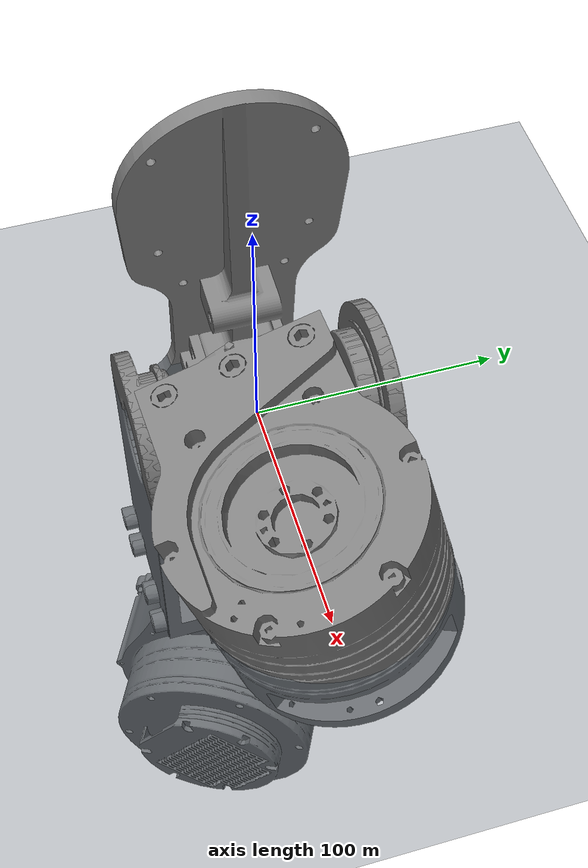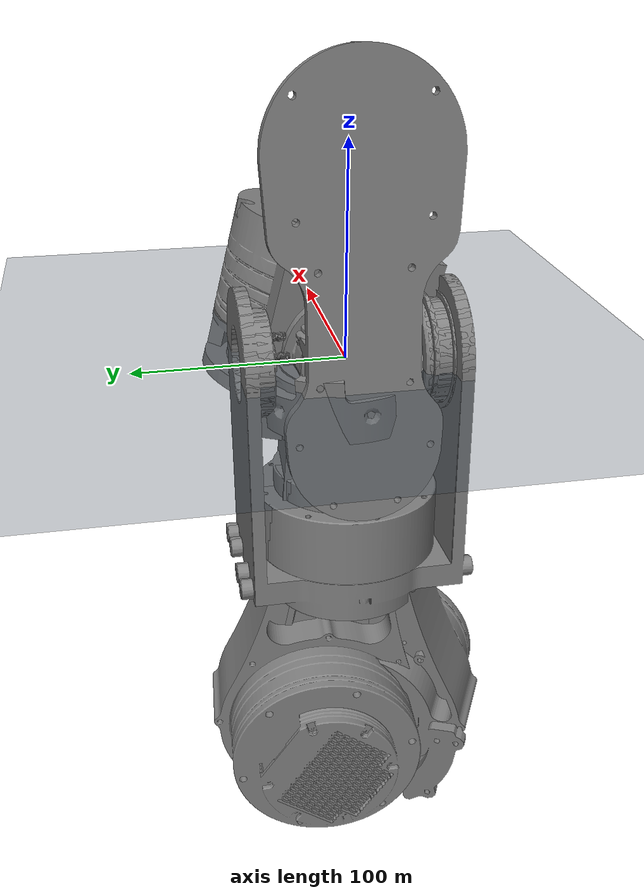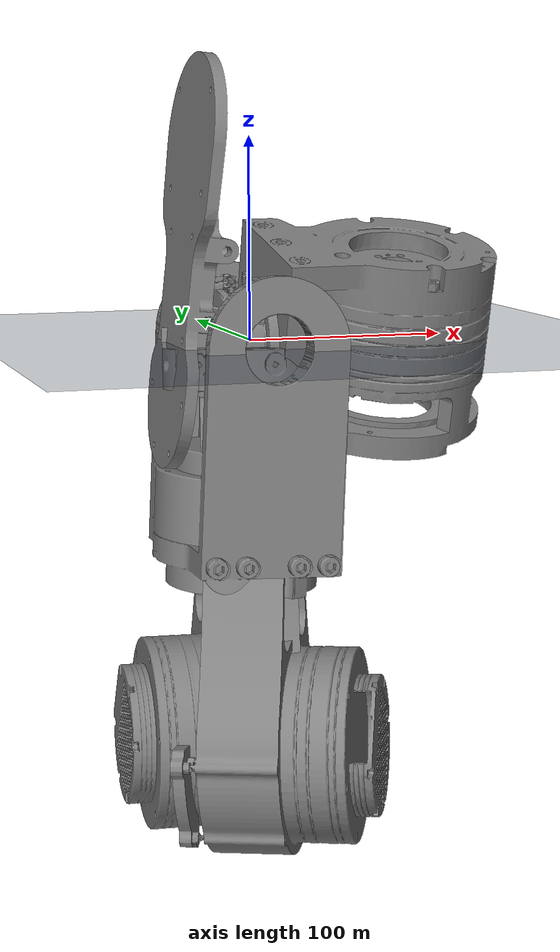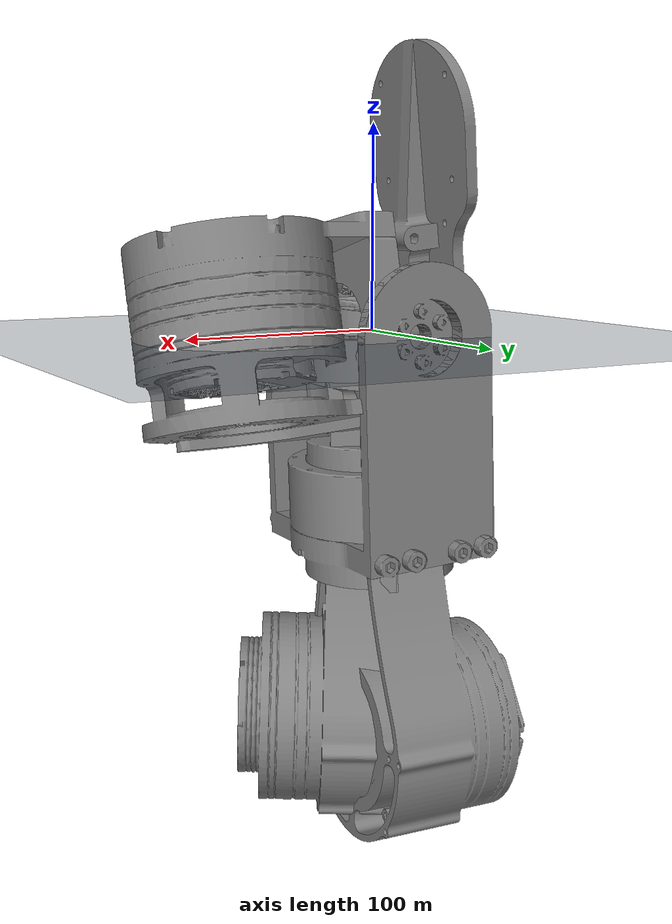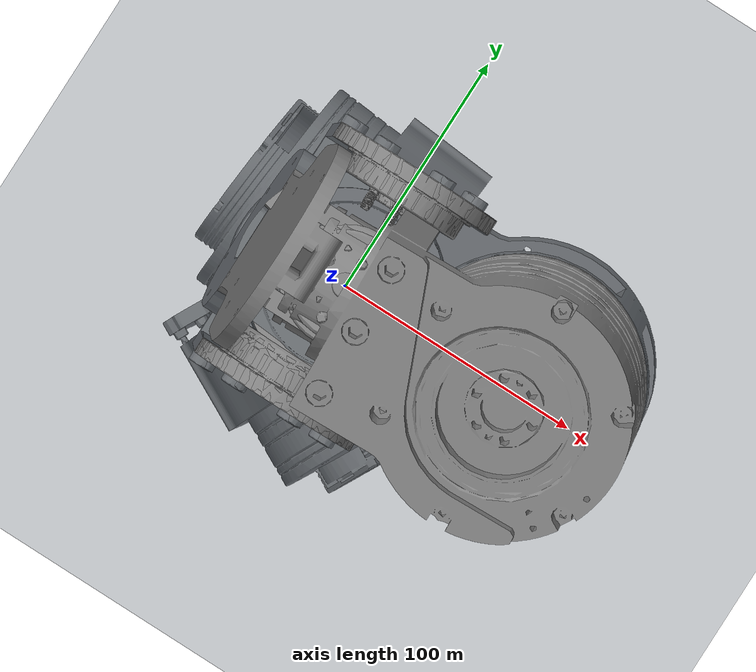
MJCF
<mujoco model="biped 12-dof robot">
  <compiler angle="radian" meshdir="meshes/" autolimits="true"/>

  <option gravity="0 0 -9.81" timestep="0.001"/>

  <statistic center="0 0 0.5" extent="1.0" meansize="0.05"/>

  <visual>
    <headlight diffuse="0.6 0.6 0.6" ambient="0.3 0.3 0.3" specular="0 0 0"/>
    <rgba haze="0.15 0.25 0.35 1"/>
    <global azimuth="-140" elevation="-20"/>
  </visual>

  <asset>
    <mesh name="link0_torso"           file="link0_torso.stl"/>
    <mesh name="left_hip_pitch_link"   file="left_hip_pitch_link.stl"/>
    <mesh name="left_hip_roll_link"    file="left_hip_roll_link.stl"/>
    <mesh name="left_hip_yaw_link"     file="left_hip_yaw_link.stl"/>
    <mesh name="left_knee_link"        file="left_knee_link.stl"/>
    <mesh name="left_ankle_roll_link"  file="left_ankle_roll_link.stl"/>
    <mesh name="left_ankle_pitch_link" file="left_ankle_pitch_link.stl"/>
    <mesh name="right_hip_pitch_link"  file="right_hip_pitch_link.stl"/>
    <mesh name="right_hip_roll_link"   file="right_hip_roll_link.stl"/>
    <mesh name="right_hip_yaw_link"    file="right_hip_yaw_link.stl"/>
    <mesh name="right_knee_link"       file="right_knee_link.stl"/>
    <mesh name="right_ankle_roll_link" file="right_ankle_roll_link.stl"/>
    <mesh name="right_ankle_pitch_link" file="right_ankle_pitch_link.stl"/>

    <texture type="2d" name="groundplane" builtin="checker" mark="random"
        rgb1="0.25 0.3 0.35" rgb2="0.15 0.2 0.25"
        markrgb="0.6 0.7 0.8" width="512" height="512"/>
    <material name="groundplane" texture="groundplane" texuniform="true" texrepeat="2 2" reflectance="0.05"/>
  </asset>

  <!-- Joint damping matches Pinocchio model (zero) for FK/ID comparison.
       Restore real values once verification is complete. -->
  <default>
    <joint damping="0.0" armature="0.0" frictionloss="0.0"/>
    <geom contype="0" conaffinity="0" group="1" density="0"/>
  </default>

  <contact>
    <pair geom1="floor" geom2="Left_Foot"  solimp="0.9 0.95 0.0001" solref="0.001 1"/>
    <pair geom1="floor" geom2="Right_Foot" solimp="0.9 0.95 0.0001" solref="0.001 1"/>
  </contact>

  <worldbody>
    <light pos="0 0 3.5" dir="0 0 -1" directional="true"/>
    <geom name="floor" size="0 0 0.05" type="plane" material="groundplane"
          contype="1" conaffinity="1"/>

    <!-- Pinocchio FK markers (positions overwritten at runtime after mj_forward) -->
    <site name="left_foot_pinocchio"  type="sphere" size="0.04" rgba="0.1 0.9 0.1 0.8" pos="0  0.09 0"/>
    <site name="right_foot_pinocchio" type="sphere" size="0.04" rgba="1.0 0.5 0.0 0.8" pos="0 -0.09 0"/>

    <!-- Floating-base torso — initial height matched to Pinocchio base_z param -->
    <body name="link0_torso" pos="0 0 0.9">
      <joint name="floating_base_joint" type="free" limited="false" actuatorfrclimited="false"/>
      <inertial pos="2.2e-05 1.1e-05 -0.009359" quat="1 0.000109506 -6.05167e-05 -0.000118194"
                mass="5.721" diaginertia="0.1338 0.1019 0.06278"/>
      <geom name="Geom_1" pos="7.79603e-05 0.000318037 0.096917"
            quat="0.999999 -0.000330979 -0.00042909 0.0009936"
            type="mesh" mesh="link0_torso"/>

      <!-- IMU site for sensor readings -->
      <site name="torso_imu" type="box" pos="0.02 0 0.02" size="0.01 0.01 0.01" rgba="1 0 0 1"/>

      <!-- ── Left leg ─────────────────────────────────────────────────────── -->
      <body name="left_hip_pitch_link" pos="0 0.089761 -0.081437" quat="0.991445 -0.130526 0 0">
        <inertial pos="0.005535 0.059218 0.000579" quat="0.54321 0.471468 -0.526254 0.453539"
                  mass="1.764" diaginertia="0.00348919 0.00333912 0.00226469"/>
        <joint name="left_hip_pitch_joint" pos="0 0 0" axis="0 1 0"
               range="-1.0472 1.0472" actuatorfrcrange="-1000 1000"/>
        <geom name="Geom_2" pos="0.00167993 0.0555442 0.000550872"
              quat="0.519286 0.481585 -0.521694 0.475661" type="mesh" mesh="left_hip_pitch_link"/>

        <body name="left_hip_roll_link" pos="0 0.075 0" quat="0.991445 0.130526 0 0">
          <inertial pos="1.6e-05 -0.000136 -0.073241" quat="0.706689 0.00287917 0.00343692 0.70751"
                    mass="1.2918" diaginertia="0.003153 0.00235903 0.00197497"/>
          <joint name="left_hip_roll_joint" pos="0 0 0" axis="1 0 0"
                 range="-0.785398 1.0472" actuatorfrcrange="-1000 1000"/>
          <geom name="Geom_3" pos="0.000168753 -1.79876e-05 -0.0688067"
                quat="0.70714 0.012963 0.0137087 0.706821" type="mesh" mesh="left_hip_roll_link"/>

          <body name="left_hip_yaw_link" pos="0 0 -0.1205">
            <inertial pos="-0.000314 -0.013334 -0.166036" quat="0.726021 -0.0341239 0.0343947 0.685964"
                      mass="1.983" diaginertia="0.012177 0.0116484 0.00198957"/>
            <joint name="left_hip_yaw_joint" pos="0 0 0" axis="0 0 1"
                   range="-0.785398 0.785398" actuatorfrcrange="-1000 1000"/>
            <geom name="Geom_4" pos="-0.000532642 -0.00659485 -0.138083"
                  quat="0.853343 -0.0319929 0.0228041 0.519868" type="mesh" mesh="left_hip_yaw_link"/>

            <body name="left_knee_link" pos="0 0 -0.2035">
              <inertial pos="0.0097 0.003585 -0.164623" quat="0.997864 -0.0268182 -0.0298229 -0.0515561"
                        mass="1.894" diaginertia="0.017253 0.0170683 0.00140868"/>
              <joint name="left_knee_pitch_joint" pos="0 0 0" axis="0 1 0"
                     range="-0.174533 2.0944" actuatorfrcrange="-1000 1000"/>
              <geom name="Geom_5" pos="0.00720688 0.00529163 -0.162386"
                    quat="0.999286 -0.0312041 -0.0196131 0.00825372" type="mesh" mesh="left_knee_link"/>

              <body name="left_ankle_roll_link" pos="0 0 -0.335">
                <inertial pos="0 0 0" quat="0.707107 0.707107 0 0"
                          mass="0.040313" diaginertia="7.009e-06 5.12501e-06 3.4981e-06"/>
                <joint name="left_ankle_roll_joint" pos="0 0 0" axis="1 0 0"
                       range="-0.261799 0.261799" actuatorfrcrange="-1000 1000"/>
                <geom name="Geom_6" pos="7.51834e-09 -3.05311e-09 6.79059e-09"
                      quat="-3.09086e-08 0.707107 3.09086e-08 0.707107"
                      type="mesh" mesh="left_ankle_roll_link"/>

                <body name="left_ankle_pitch_link">
                  <inertial pos="0.029106 0 -0.030483" quat="0.000188682 0.729142 0.000213619 0.684362"
                            mass="0.343229" diaginertia="0.000946586 0.000877 0.000151414"/>
                  <joint name="left_ankle_pitch_joint" pos="0 0 0" axis="0 1 0"
                         range="-0.523599 0.523599" actuatorfrcrange="-1000 1000"/>
                  <geom name="Geom_7" pos="0.0252117 6.09626e-06 -0.0252582"
                        quat="0.000134102 0.74395 -1.09773e-05 0.668236"
                        type="mesh" mesh="left_ankle_pitch_link"/>
                  <!-- Foot contact box -->
                  <geom name="Left_Foot" type="box" size="0.09 0.03 0.006"
                        pos="0.04 0 -0.034" contype="1" conaffinity="1"
                        rgba="0.4 0.4 0.8 0.5" group="3"/>
                </body>
              </body>
            </body>
          </body>
        </body>
      </body>

      <!-- ── Right leg ────────────────────────────────────────────────────── -->
      <body name="right_hip_pitch_link" pos="0 -0.089761 -0.081437" quat="0.991445 0.130526 0 0">
        <inertial pos="0.005579 -0.05977 0.000581" quat="0.469823 0.544266 -0.452624 0.527421"
                  mass="1.764" diaginertia="0.00341718 0.00326707 0.00226275"/>
        <joint name="right_hip_pitch_joint" pos="0 0 0" axis="0 1 0"
               range="-1.0472 1.0472" actuatorfrcrange="-1000 1000"/>
        <geom name="Geom_8" pos="0.000859423 -0.0572701 0.000534712"
              quat="0.492136 0.508174 -0.488461 0.510851" type="mesh" mesh="right_hip_pitch_link"/>

        <body name="right_hip_roll_link" pos="0 -0.075 0" quat="0.991445 -0.130526 0 0">
          <inertial pos="1.6e-05 -0.000136 -0.073241" quat="0.706689 0.00287917 0.00343692 0.70751"
                    mass="1.2918" diaginertia="0.003153 0.00235903 0.00197497"/>
          <joint name="right_hip_roll_joint" pos="0 0 0" axis="1 0 0"
                 range="-1.0472 0.610865" actuatorfrcrange="-1000 1000"/>
          <geom name="Geom_9" pos="0.000234252 -6.4135e-06 -0.0688508"
                quat="0.707096 0.0161722 0.0166582 0.706736" type="mesh" mesh="right_hip_roll_link"/>

          <body name="right_hip_yaw_link" pos="0 0 -0.1205">
            <inertial pos="-2.9e-05 0.013844 -0.165473" quat="0.707839 0.0333937 -0.0331595 0.704805"
                      mass="1.983" diaginertia="0.0121706 0.01164 0.00191838"/>
            <joint name="right_hip_yaw_joint" pos="0 0 0" axis="0 0 1"
                   range="-0.785398 0.785398" actuatorfrcrange="-1000 1000"/>
            <geom name="Geom_10" pos="-0.000124317 0.00806157 -0.136323"
                  quat="0.735439 0.0252616 -0.0226934 0.676739" type="mesh" mesh="right_hip_yaw_link"/>

            <body name="right_knee_link" pos="0 0 -0.2035">
              <inertial pos="0.009336 -0.003761 -0.163038" quat="0.998888 0.0287359 -0.0263346 0.0265205"
                        mass="1.879" diaginertia="0.0165702 0.0163813 0.00138847"/>
              <joint name="right_knee_pitch_joint" pos="0 0 0" axis="0 1 0"
                     range="-0.174533 2.0944" actuatorfrcrange="-1000 1000"/>
              <geom name="Geom_11" pos="0.00651264 -0.0053811 -0.160005"
                    quat="0.998421 0.0326769 -0.0142303 -0.0434194" type="mesh" mesh="right_knee_link"/>

              <body name="right_ankle_roll_link" pos="0 0 -0.335">
                <inertial pos="0 0 0" quat="0.707107 0.707107 0 0"
                          mass="0.040313" diaginertia="7.009e-06 5.12501e-06 3.4981e-06"/>
                <joint name="right_ankle_roll_joint" pos="0 0 0" axis="1 0 0"
                       range="-0.261799 0.261799" actuatorfrcrange="-1000 1000"/>
                <geom name="Geom_12" pos="2.67438e-06 7.25847e-07 5.63185e-07"
                      quat="-3.09086e-08 0.707107 3.09086e-08 0.707107"
                      type="mesh" mesh="right_ankle_roll_link"/>

                <body name="right_ankle_pitch_link">
                  <inertial pos="0.029106 0 -0.030483" quat="0.000188682 0.729142 0.000213619 0.684362"
                            mass="0.343229" diaginertia="0.000946586 0.000877 0.000151414"/>
                  <joint name="right_ankle_pitch_joint" pos="0 0 0" axis="0 1 0"
                         range="-0.523599 0.523599" actuatorfrcrange="-1000 1000"/>
                  <geom name="Geom_13" pos="0.0252108 4.67524e-06 -0.0252552"
                        quat="0.000166112 0.743949 1.61954e-05 0.668236"
                        type="mesh" mesh="right_ankle_pitch_link"/>
                  <!-- Foot contact box -->
                  <geom name="Right_Foot" type="box" size="0.09 0.03 0.006"
                        pos="0.04 0 -0.034" contype="1" conaffinity="1"
                        rgba="0.8 0.4 0.4 0.5" group="3"/>
                </body>
              </body>
            </body>
          </body>
        </body>
      </body>
    </body>
  </worldbody>

  <actuator>
    <motor name="left_hip_pitch_m"   joint="left_hip_pitch_joint"   ctrlrange="-200 200"/>
    <motor name="left_hip_roll_m"    joint="left_hip_roll_joint"    ctrlrange="-200 200"/>
    <motor name="left_hip_yaw_m"     joint="left_hip_yaw_joint"     ctrlrange="-100 100"/>
    <motor name="left_knee_m"        joint="left_knee_pitch_joint"  ctrlrange="-200 200"/>
    <motor name="left_ank_roll_m"    joint="left_ankle_roll_joint"  ctrlrange="-50  50"/>
    <motor name="left_ank_pitch_m"   joint="left_ankle_pitch_joint" ctrlrange="-50  50"/>

    <motor name="right_hip_pitch_m"  joint="right_hip_pitch_joint"  ctrlrange="-200 200"/>
    <motor name="right_hip_roll_m"   joint="right_hip_roll_joint"   ctrlrange="-200 200"/>
    <motor name="right_hip_yaw_m"    joint="right_hip_yaw_joint"    ctrlrange="-100 100"/>
    <motor name="right_knee_m"       joint="right_knee_pitch_joint" ctrlrange="-200 200"/>
    <motor name="right_ank_roll_m"   joint="right_ankle_roll_joint" ctrlrange="-50  50"/>
    <motor name="right_ank_pitch_m"  joint="right_ankle_pitch_joint" ctrlrange="-50  50"/>
  </actuator>

  <sensor>
    <framequat     name="torso_quat"  objtype="site" objname="torso_imu"/>
    <accelerometer name="torso_accel" site="torso_imu"/>
    <gyro          name="torso_gyro"  site="torso_imu"/>
  </sensor>

</mujoco>
